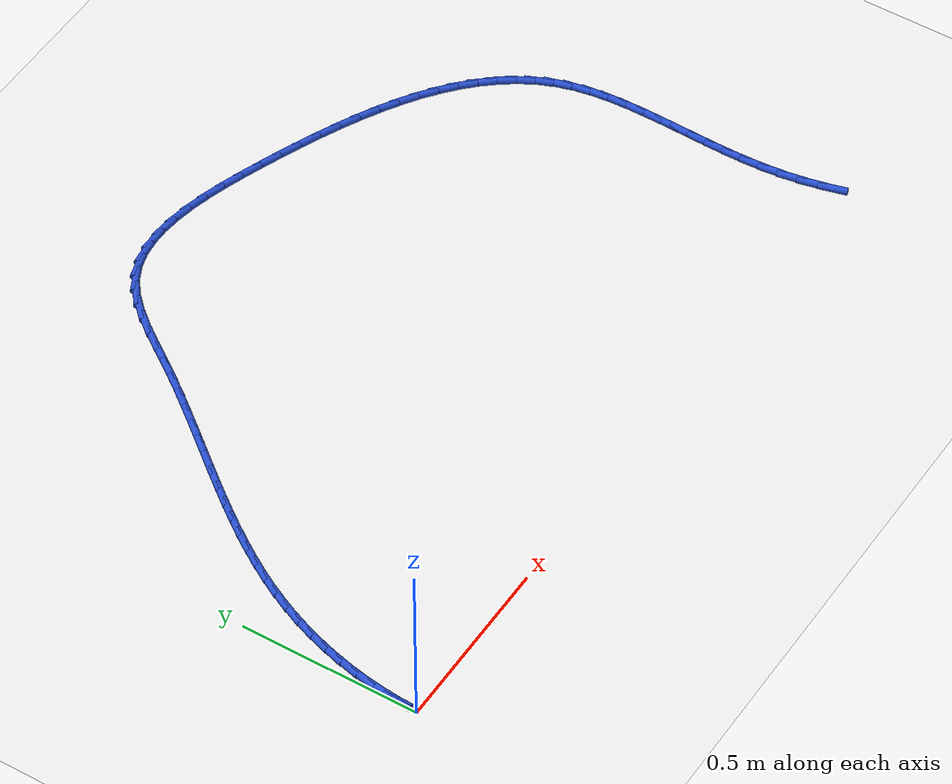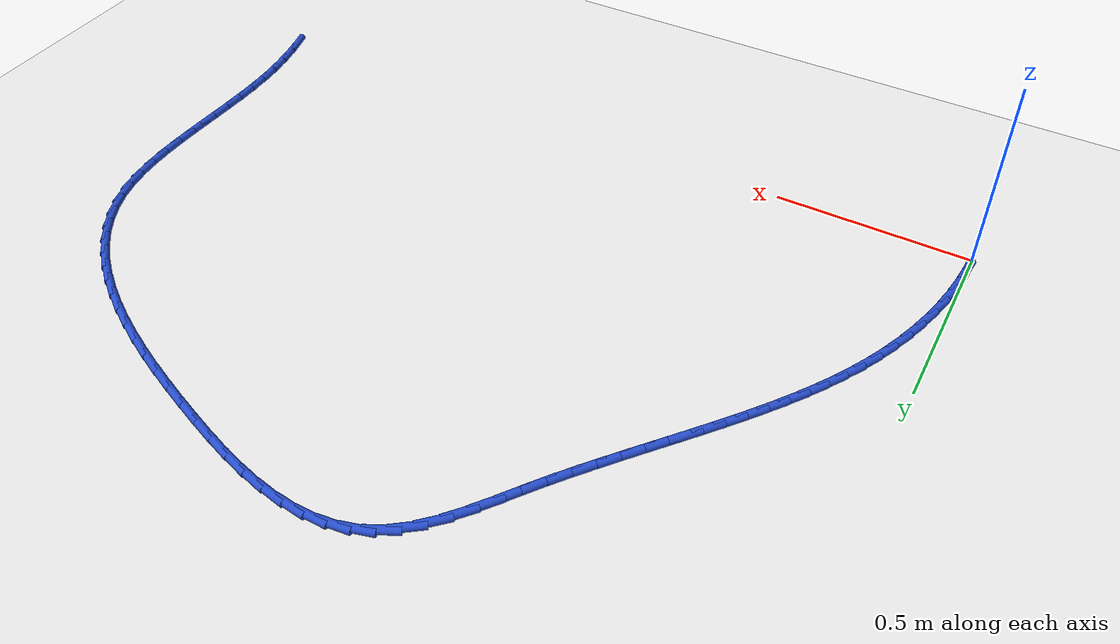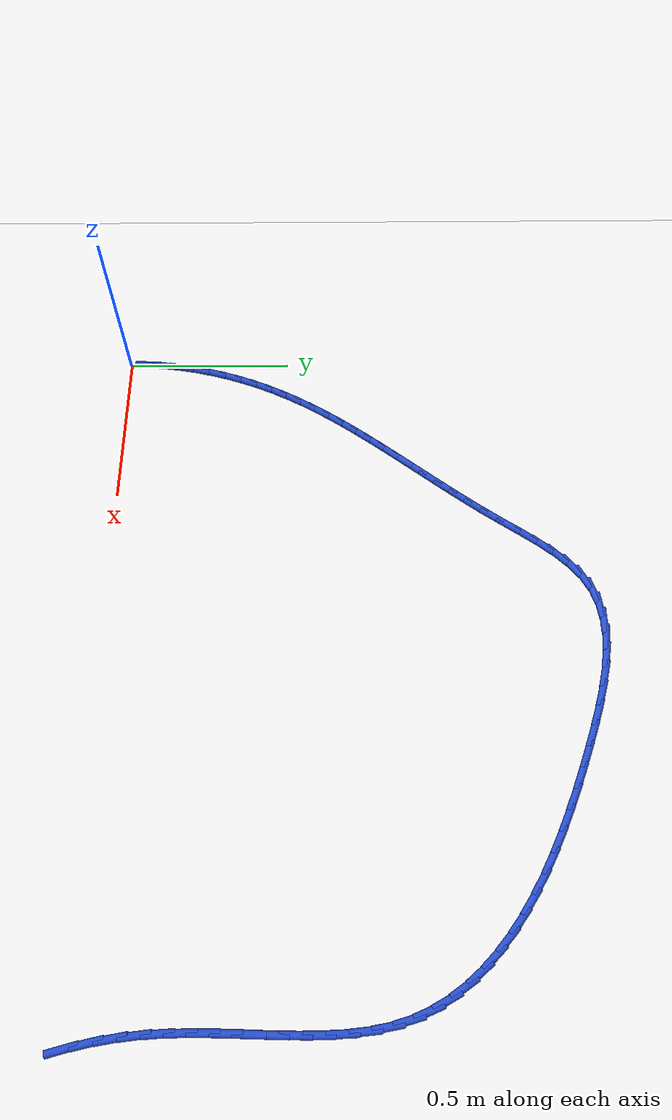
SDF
<sdf version="1.6">
 <world name="default">
  <model name="ground_plane">
   <static>1</static>
   <link name="link">
    <collision name="collision">
     <geometry><plane><normal>0 0 1</normal><size>100 100</size></plane></geometry>
     <surface><friction><ode><mu>100</mu><mu2>50</mu2></ode></friction></surface>
    </collision>
    <visual name="visual">
     <cast_shadows>0</cast_shadows>
     <geometry><plane><normal>0 0 1</normal><size>100 100</size></plane></geometry>
     <material>
      <script><uri>file://media/materials/scripts/gazebo.material</uri><name>Gazebo/WhiteGlow</name></script>
     </material>
    </visual>
   </link>
  </model>
  <model name="line">
   <link name="link_1">
    <pose>0.0022390424568003026 0.054379881303228794 0.01 0 1.57 1.4760865553160318</pose>
    <collision name="collision">
     <geometry><cylinder><radius>0.01</radius><length>0.08</length></cylinder></geometry>
    </collision>
    <visual name="visual">
     <material>
      <script><name>Gazebo/Blue</name><uri>file://media/materials/scripts/gazebo.material</uri></script>
     </material>
     <geometry><cylinder><radius>0.01</radius><length>0.08</length></cylinder></geometry>
    </visual>
   </link>
   <link name="link_2">
    <pose>0.007383099265475225 0.10853128400224349 0.01 0 1.57 1.4243346467549942</pose>
    <collision name="collision">
     <geometry><cylinder><radius>0.01</radius><length>0.08</length></cylinder></geometry>
    </collision>
    <visual name="visual">
     <material>
      <script><name>Gazebo/Blue</name><uri>file://media/materials/scripts/gazebo.material</uri></script>
     </material>
     <geometry><cylinder><radius>0.01</radius><length>0.08</length></cylinder></geometry>
    </visual>
   </link>
   <link name="link_3">
    <pose>0.01531320017357622 0.16228812144478444 0.01 0 1.57 1.3741611731956764</pose>
    <collision name="collision">
     <geometry><cylinder><radius>0.01</radius><length>0.08</length></cylinder></geometry>
    </collision>
    <visual name="visual">
     <material>
      <script><name>Gazebo/Blue</name><uri>file://media/materials/scripts/gazebo.material</uri></script>
     </material>
     <geometry><cylinder><radius>0.01</radius><length>0.08</length></cylinder></geometry>
    </visual>
   </link>
   <link name="link_4">
    <pose>0.02591037492865475 0.21548430697859156 0.01 0 1.57 1.3253169691965252</pose>
    <collision name="collision">
     <geometry><cylinder><radius>0.01</radius><length>0.08</length></cylinder></geometry>
    </collision>
    <visual name="visual">
     <material>
      <script><name>Gazebo/Blue</name><uri>file://media/materials/scripts/gazebo.material</uri></script>
     </material>
     <geometry><cylinder><radius>0.01</radius><length>0.08</length></cylinder></geometry>
    </visual>
   </link>
   <link name="link_5">
    <pose>0.03905565327826232 0.267953753951405 0.01 0 1.57 1.2775363864372953</pose>
    <collision name="collision">
     <geometry><cylinder><radius>0.01</radius><length>0.08</length></cylinder></geometry>
    </collision>
    <visual name="visual">
     <material>
      <script><name>Gazebo/Blue</name><uri>file://media/materials/scripts/gazebo.material</uri></script>
     </material>
     <geometry><cylinder><radius>0.01</radius><length>0.08</length></cylinder></geometry>
    </visual>
   </link>
   <link name="link_6">
    <pose>0.05463006496995043 0.319530375710965 0.01 0 1.57 1.230539522901242</pose>
    <collision name="collision">
     <geometry><cylinder><radius>0.01</radius><length>0.08</length></cylinder></geometry>
    </collision>
    <visual name="visual">
     <material>
      <script><name>Gazebo/Blue</name><uri>file://media/materials/scripts/gazebo.material</uri></script>
     </material>
     <geometry><cylinder><radius>0.01</radius><length>0.08</length></cylinder></geometry>
    </visual>
   </link>
   <link name="link_7">
    <pose>0.07251463975127054 0.37004808560501146 0.01 0 1.57 1.1840328055751552</pose>
    <collision name="collision">
     <geometry><cylinder><radius>0.01</radius><length>0.08</length></cylinder></geometry>
    </collision>
    <visual name="visual">
     <material>
      <script><name>Gazebo/Blue</name><uri>file://media/materials/scripts/gazebo.material</uri></script>
     </material>
     <geometry><cylinder><radius>0.01</radius><length>0.08</length></cylinder></geometry>
    </visual>
   </link>
   <link name="link_8">
    <pose>0.09259040736977417 0.4193407969812844 0.01 0 1.57 1.1379035304697056</pose>
    <collision name="collision">
     <geometry><cylinder><radius>0.01</radius><length>0.08</length></cylinder></geometry>
    </collision>
    <visual name="visual">
     <material>
      <script><name>Gazebo/Blue</name><uri>file://media/materials/scripts/gazebo.material</uri></script>
     </material>
     <geometry><cylinder><radius>0.01</radius><length>0.08</length></cylinder></geometry>
    </visual>
   </link>
   <link name="link_9">
    <pose>0.11473577889846497 0.46726133566953015 0.01 0 1.57 1.0940509659782551</pose>
    <collision name="collision">
     <geometry><cylinder><radius>0.01</radius><length>0.08</length></cylinder></geometry>
    </collision>
    <visual name="visual">
     <material>
      <script><name>Gazebo/Blue</name><uri>file://media/materials/scripts/gazebo.material</uri></script>
     </material>
     <geometry><cylinder><radius>0.01</radius><length>0.08</length></cylinder></geometry>
    </visual>
   </link>
   <link name="link_10">
    <pose>0.1388020942412135 0.5138580397671618 0.01 0 1.57 1.0539960227331135</pose>
    <collision name="collision">
     <geometry><cylinder><radius>0.01</radius><length>0.08</length></cylinder></geometry>
    </collision>
    <visual name="visual">
     <material>
      <script><name>Gazebo/Blue</name><uri>file://media/materials/scripts/gazebo.material</uri></script>
     </material>
     <geometry><cylinder><radius>0.01</radius><length>0.08</length></cylinder></geometry>
    </visual>
   </link>
   <link name="link_11">
    <pose>0.16462470592113299 0.559294710765527 0.01 0 1.57 1.0180784345199974</pose>
    <collision name="collision">
     <geometry><cylinder><radius>0.01</radius><length>0.08</length></cylinder></geometry>
    </collision>
    <visual name="visual">
     <material>
      <script><name>Gazebo/Blue</name><uri>file://media/materials/scripts/gazebo.material</uri></script>
     </material>
     <geometry><cylinder><radius>0.01</radius><length>0.08</length></cylinder></geometry>
    </visual>
   </link>
   <link name="link_12">
    <pose>0.19203875917318564 0.6037366472238043 0.01 0 1.57 0.986523205857931</pose>
    <collision name="collision">
     <geometry><cylinder><radius>0.01</radius><length>0.08</length></cylinder></geometry>
    </collision>
    <visual name="visual">
     <material>
      <script><name>Gazebo/Blue</name><uri>file://media/materials/scripts/gazebo.material</uri></script>
     </material>
     <geometry><cylinder><radius>0.01</radius><length>0.08</length></cylinder></geometry>
    </visual>
   </link>
   <link name="link_13">
    <pose>0.22087939923233366 0.647349147701173 0.01 0 1.57 0.959468707556324</pose>
    <collision name="collision">
     <geometry><cylinder><radius>0.01</radius><length>0.08</length></cylinder></geometry>
    </collision>
    <visual name="visual">
     <material>
      <script><name>Gazebo/Blue</name><uri>file://media/materials/scripts/gazebo.material</uri></script>
     </material>
     <geometry><cylinder><radius>0.01</radius><length>0.08</length></cylinder></geometry>
    </visual>
   </link>
   <link name="link_14">
    <pose>0.25098177133353927 0.6902975107568113 0.01 0 1.57 0.9369821409539862</pose>
    <collision name="collision">
     <geometry><cylinder><radius>0.01</radius><length>0.08</length></cylinder></geometry>
    </collision>
    <visual name="visual">
     <material>
      <script><name>Gazebo/Blue</name><uri>file://media/materials/scripts/gazebo.material</uri></script>
     </material>
     <geometry><cylinder><radius>0.01</radius><length>0.08</length></cylinder></geometry>
    </visual>
   </link>
   <link name="link_15">
    <pose>0.2821810207117648 0.7327470349498988 0.01 0 1.57 0.9190753835880875</pose>
    <collision name="collision">
     <geometry><cylinder><radius>0.01</radius><length>0.08</length></cylinder></geometry>
    </collision>
    <visual name="visual">
     <material>
      <script><name>Gazebo/Blue</name><uri>file://media/materials/scripts/gazebo.material</uri></script>
     </material>
     <geometry><cylinder><radius>0.01</radius><length>0.08</length></cylinder></geometry>
    </visual>
   </link>
   <link name="link_16">
    <pose>0.31431229260197247 0.7748630188396135 0.01 0 1.57 0.9057194745621432</pose>
    <collision name="collision">
     <geometry><cylinder><radius>0.01</radius><length>0.08</length></cylinder></geometry>
    </collision>
    <visual name="visual">
     <material>
      <script><name>Gazebo/Blue</name><uri>file://media/materials/scripts/gazebo.material</uri></script>
     </material>
     <geometry><cylinder><radius>0.01</radius><length>0.08</length></cylinder></geometry>
    </visual>
   </link>
   <link name="link_17">
    <pose>0.3472107322391245 0.816810760985135 0.01 0 1.57 0.8968566969022087</pose>
    <collision name="collision">
     <geometry><cylinder><radius>0.01</radius><length>0.08</length></cylinder></geometry>
    </collision>
    <visual name="visual">
     <material>
      <script><name>Gazebo/Blue</name><uri>file://media/materials/scripts/gazebo.material</uri></script>
     </material>
     <geometry><cylinder><radius>0.01</radius><length>0.08</length></cylinder></geometry>
    </visual>
   </link>
   <link name="link_18">
    <pose>0.3807114848581831 0.8587555599456416 0.01 0 1.57 0.8924097803168987</pose>
    <collision name="collision">
     <geometry><cylinder><radius>0.01</radius><length>0.08</length></cylinder></geometry>
    </collision>
    <visual name="visual">
     <material>
      <script><name>Gazebo/Blue</name><uri>file://media/materials/scripts/gazebo.material</uri></script>
     </material>
     <geometry><cylinder><radius>0.01</radius><length>0.08</length></cylinder></geometry>
    </visual>
   </link>
   <link name="link_19">
    <pose>0.4146496956941105 0.9008627142803124 0.01 0 1.57 0.8922881439437028</pose>
    <collision name="collision">
     <geometry><cylinder><radius>0.01</radius><length>0.08</length></cylinder></geometry>
    </collision>
    <visual name="visual">
     <material>
      <script><name>Gazebo/Blue</name><uri>file://media/materials/scripts/gazebo.material</uri></script>
     </material>
     <geometry><cylinder><radius>0.01</radius><length>0.08</length></cylinder></geometry>
    </visual>
   </link>
   <link name="link_20">
    <pose>0.4488605099818691 0.9432975225483262 0.01 0 1.57 0.8963913430219269</pose>
    <collision name="collision">
     <geometry><cylinder><radius>0.01</radius><length>0.08</length></cylinder></geometry>
    </collision>
    <visual name="visual">
     <material>
      <script><name>Gazebo/Blue</name><uri>file://media/materials/scripts/gazebo.material</uri></script>
     </material>
     <geometry><cylinder><radius>0.01</radius><length>0.08</length></cylinder></geometry>
    </visual>
   </link>
   <link name="link_21">
    <pose>0.4831790729564208 0.9862252833088612 0.01 0 1.57 0.9046100182879823</pose>
    <collision name="collision">
     <geometry><cylinder><radius>0.01</radius><length>0.08</length></cylinder></geometry>
    </collision>
    <visual name="visual">
     <material>
      <script><name>Gazebo/Blue</name><uri>file://media/materials/scripts/gazebo.material</uri></script>
     </material>
     <geometry><cylinder><radius>0.01</radius><length>0.08</length></cylinder></geometry>
    </visual>
   </link>
   <link name="link_22">
    <pose>0.5174405298527281 1.029811295121097 0.01 0 1.57 0.9168247179570859</pose>
    <collision name="collision">
     <geometry><cylinder><radius>0.01</radius><length>0.08</length></cylinder></geometry>
    </collision>
    <visual name="visual">
     <material>
      <script><name>Gazebo/Blue</name><uri>file://media/materials/scripts/gazebo.material</uri></script>
     </material>
     <geometry><cylinder><radius>0.01</radius><length>0.08</length></cylinder></geometry>
    </visual>
   </link>
   <link name="link_23">
    <pose>0.5514800259057534 1.0742208565442124 0.01 0 1.57 0.9329030076732835</pose>
    <collision name="collision">
     <geometry><cylinder><radius>0.01</radius><length>0.08</length></cylinder></geometry>
    </collision>
    <visual name="visual">
     <material>
      <script><name>Gazebo/Blue</name><uri>file://media/materials/scripts/gazebo.material</uri></script>
     </material>
     <geometry><cylinder><radius>0.01</radius><length>0.08</length></cylinder></geometry>
    </visual>
   </link>
   <link name="link_24">
    <pose>0.5851327063504586 1.1196192661373858 0.01 0 1.57 0.9513599960890838</pose>
    <collision name="collision">
     <geometry><cylinder><radius>0.01</radius><length>0.08</length></cylinder></geometry>
    </collision>
    <visual name="visual">
     <material>
      <script><name>Gazebo/Blue</name><uri>file://media/materials/scripts/gazebo.material</uri></script>
     </material>
     <geometry><cylinder><radius>0.01</radius><length>0.08</length></cylinder></geometry>
    </visual>
   </link>
   <link name="link_25">
    <pose>0.6182712246254696 1.1660930450590108 0.01 0 1.57 0.9546941731813836</pose>
    <collision name="collision">
     <geometry><cylinder><radius>0.01</radius><length>0.08</length></cylinder></geometry>
    </collision>
    <visual name="visual">
     <material>
      <script><name>Gazebo/Blue</name><uri>file://media/materials/scripts/gazebo.material</uri></script>
     </material>
     <geometry><cylinder><radius>0.01</radius><length>0.08</length></cylinder></geometry>
    </visual>
   </link>
   <link name="link_26">
    <pose>0.6512631888355103 1.2126891754255185 0.01 0 1.57 0.9302929567576277</pose>
    <collision name="collision">
     <geometry><cylinder><radius>0.01</radius><length>0.08</length></cylinder></geometry>
    </collision>
    <visual name="visual">
     <material>
      <script><name>Gazebo/Blue</name><uri>file://media/materials/scripts/gazebo.material</uri></script>
     </material>
     <geometry><cylinder><radius>0.01</radius><length>0.08</length></cylinder></geometry>
    </visual>
   </link>
   <link name="link_27">
    <pose>0.6848259382244212 1.2577201091060215 0.01 0 1.57 0.8752677764476182</pose>
    <collision name="collision">
     <geometry><cylinder><radius>0.01</radius><length>0.08</length></cylinder></geometry>
    </collision>
    <visual name="visual">
     <material>
      <script><name>Gazebo/Blue</name><uri>file://media/materials/scripts/gazebo.material</uri></script>
     </material>
     <geometry><cylinder><radius>0.01</radius><length>0.08</length></cylinder></geometry>
    </visual>
   </link>
   <link name="link_28">
    <pose>0.719684172846758 1.2994828382707098 0.01 0 1.57 0.7842185363364818</pose>
    <collision name="collision">
     <geometry><cylinder><radius>0.01</radius><length>0.08</length></cylinder></geometry>
    </collision>
    <visual name="visual">
     <material>
      <script><name>Gazebo/Blue</name><uri>file://media/materials/scripts/gazebo.material</uri></script>
     </material>
     <geometry><cylinder><radius>0.01</radius><length>0.08</length></cylinder></geometry>
    </visual>
   </link>
   <link name="link_29">
    <pose>0.7565625927570755 1.3362743550897724 0.01 0 1.57 0.6499277924118434</pose>
    <collision name="collision">
     <geometry><cylinder><radius>0.01</radius><length>0.08</length></cylinder></geometry>
    </collision>
    <visual name="visual">
     <material>
      <script><name>Gazebo/Blue</name><uri>file://media/materials/scripts/gazebo.material</uri></script>
     </material>
     <geometry><cylinder><radius>0.01</radius><length>0.08</length></cylinder></geometry>
    </visual>
   </link>
   <link name="link_30">
    <pose>0.7961858980099293 1.3663916517333994 0.01 0 1.57 0.47115376710419815</pose>
    <collision name="collision">
     <geometry><cylinder><radius>0.01</radius><length>0.08</length></cylinder></geometry>
    </collision>
    <visual name="visual">
     <material>
      <script><name>Gazebo/Blue</name><uri>file://media/materials/scripts/gazebo.material</uri></script>
     </material>
     <geometry><cylinder><radius>0.01</radius><length>0.08</length></cylinder></geometry>
    </visual>
   </link>
   <link name="link_31">
    <pose>0.8392011386602475 1.3883043991376236 0.01 0 1.57 0.28782883131402026</pose>
    <collision name="collision">
     <geometry><cylinder><radius>0.01</radius><length>0.08</length></cylinder></geometry>
    </collision>
    <visual name="visual">
     <material>
      <script><name>Gazebo/Blue</name><uri>file://media/materials/scripts/gazebo.material</uri></script>
     </material>
     <geometry><cylinder><radius>0.01</radius><length>0.08</length></cylinder></geometry>
    </visual>
   </link>
   <link name="link_32">
    <pose>0.8855598792674302 1.4020288951233262 0.01 0 1.57 0.12848597164306225</pose>
    <collision name="collision">
     <geometry><cylinder><radius>0.01</radius><length>0.08</length></cylinder></geometry>
    </collision>
    <visual name="visual">
     <material>
      <script><name>Gazebo/Blue</name><uri>file://media/materials/scripts/gazebo.material</uri></script>
     </material>
     <geometry><cylinder><radius>0.01</radius><length>0.08</length></cylinder></geometry>
    </visual>
   </link>
   <link name="link_33">
    <pose>0.9348470828918742 1.4083966892140172 0.01 0 1.57 -0.002896581844115343</pose>
    <collision name="collision">
     <geometry><cylinder><radius>0.01</radius><length>0.08</length></cylinder></geometry>
    </collision>
    <visual name="visual">
     <material>
      <script><name>Gazebo/Blue</name><uri>file://media/materials/scripts/gazebo.material</uri></script>
     </material>
     <geometry><cylinder><radius>0.01</radius><length>0.08</length></cylinder></geometry>
    </visual>
   </link>
   <link name="link_34">
    <pose>0.9866444197591359 1.4082466535688647 0.01 0 1.57 -0.10774746901296946</pose>
    <collision name="collision">
     <geometry><cylinder><radius>0.01</radius><length>0.08</length></cylinder></geometry>
    </collision>
    <visual name="visual">
     <material>
      <script><name>Gazebo/Blue</name><uri>file://media/materials/scripts/gazebo.material</uri></script>
     </material>
     <geometry><cylinder><radius>0.01</radius><length>0.08</length></cylinder></geometry>
    </visual>
   </link>
   <link name="link_35">
    <pose>1.0405335600947718 1.4024176603470386 0.01 0 1.57 -0.18970989477356984</pose>
    <collision name="collision">
     <geometry><cylinder><radius>0.01</radius><length>0.08</length></cylinder></geometry>
    </collision>
    <visual name="visual">
     <material>
      <script><name>Gazebo/Blue</name><uri>file://media/materials/scripts/gazebo.material</uri></script>
     </material>
     <geometry><cylinder><radius>0.01</radius><length>0.08</length></cylinder></geometry>
    </visual>
   </link>
   <link name="link_36">
    <pose>1.0960961741243385 1.3917485817077082 0.01 0 1.57 -0.2526804181186774</pose>
    <collision name="collision">
     <geometry><cylinder><radius>0.01</radius><length>0.08</length></cylinder></geometry>
    </collision>
    <visual name="visual">
     <material>
      <script><name>Gazebo/Blue</name><uri>file://media/materials/scripts/gazebo.material</uri></script>
     </material>
     <geometry><cylinder><radius>0.01</radius><length>0.08</length></cylinder></geometry>
    </visual>
   </link>
   <link name="link_37">
    <pose>1.1529139320733928 1.377078289810043 0.01 0 1.57 -0.2999680848438112</pose>
    <collision name="collision">
     <geometry><cylinder><radius>0.01</radius><length>0.08</length></cylinder></geometry>
    </collision>
    <visual name="visual">
     <material>
      <script><name>Gazebo/Blue</name><uri>file://media/materials/scripts/gazebo.material</uri></script>
     </material>
     <geometry><cylinder><radius>0.01</radius><length>0.08</length></cylinder></geometry>
    </visual>
   </link>
   <link name="link_38">
    <pose>1.210568504167491 1.359245656813213 0.01 0 1.57 -0.33407273972191776</pose>
    <collision name="collision">
     <geometry><cylinder><radius>0.01</radius><length>0.08</length></cylinder></geometry>
    </collision>
    <visual name="visual">
     <material>
      <script><name>Gazebo/Blue</name><uri>file://media/materials/scripts/gazebo.material</uri></script>
     </material>
     <geometry><cylinder><radius>0.01</radius><length>0.08</length></cylinder></geometry>
    </visual>
   </link>
   <link name="link_39">
    <pose>1.2686415606321901 1.3390895548763873 0.01 0 1.57 -0.3567050726452201</pose>
    <collision name="collision">
     <geometry><cylinder><radius>0.01</radius><length>0.08</length></cylinder></geometry>
    </collision>
    <visual name="visual">
     <material>
      <script><name>Gazebo/Blue</name><uri>file://media/materials/scripts/gazebo.material</uri></script>
     </material>
     <geometry><cylinder><radius>0.01</radius><length>0.08</length></cylinder></geometry>
    </visual>
   </link>
   <link name="link_40">
    <pose>1.3267147757637379 1.3174488181871438 0.01 0 1.57 -0.3716649266323783</pose>
    <collision name="collision">
     <geometry><cylinder><radius>0.01</radius><length>0.08</length></cylinder></geometry>
    </collision>
    <visual name="visual">
     <material>
      <script><name>Gazebo/Blue</name><uri>file://media/materials/scripts/gazebo.material</uri></script>
     </material>
     <geometry><cylinder><radius>0.01</radius><length>0.08</length></cylinder></geometry>
    </visual>
   </link>
   <link name="link_41">
    <pose>1.3843906596289903 1.2949679239570293 0.01 0 1.57 -0.38870124824013785</pose>
    <collision name="collision">
     <geometry><cylinder><radius>0.01</radius><length>0.08</length></cylinder></geometry>
    </collision>
    <visual name="visual">
     <material>
      <script><name>Gazebo/Blue</name><uri>file://media/materials/scripts/gazebo.material</uri></script>
     </material>
     <geometry><cylinder><radius>0.01</radius><length>0.08</length></cylinder></geometry>
    </visual>
   </link>
   <link name="link_42">
    <pose>1.441341056239885 1.2716445993369665 0.01 0 1.57 -0.4100248646708028</pose>
    <collision name="collision">
     <geometry><cylinder><radius>0.01</radius><length>0.08</length></cylinder></geometry>
    </collision>
    <visual name="visual">
     <material>
      <script><name>Gazebo/Blue</name><uri>file://media/materials/scripts/gazebo.material</uri></script>
     </material>
     <geometry><cylinder><radius>0.01</radius><length>0.08</length></cylinder></geometry>
    </visual>
   </link>
   <link name="link_43">
    <pose>1.497252213330228 1.2473422129327394 0.01 0 1.57 -0.4359888340937455</pose>
    <collision name="collision">
     <geometry><cylinder><radius>0.01</radius><length>0.08</length></cylinder></geometry>
    </collision>
    <visual name="visual">
     <material>
      <script><name>Gazebo/Blue</name><uri>file://media/materials/scripts/gazebo.material</uri></script>
     </material>
     <geometry><cylinder><radius>0.01</radius><length>0.08</length></cylinder></geometry>
    </visual>
   </link>
   <link name="link_44">
    <pose>1.551810378633825 1.2219241333501318 0.01 0 1.57 -0.46704039360065797</pose>
    <collision name="collision">
     <geometry><cylinder><radius>0.01</radius><length>0.08</length></cylinder></geometry>
    </collision>
    <visual name="visual">
     <material>
      <script><name>Gazebo/Blue</name><uri>file://media/materials/scripts/gazebo.material</uri></script>
     </material>
     <geometry><cylinder><radius>0.01</radius><length>0.08</length></cylinder></geometry>
    </visual>
   </link>
   <link name="link_45">
    <pose>1.6047017998844797 1.1952537291949275 0.01 0 1.57 -0.5037227444229363</pose>
    <collision name="collision">
     <geometry><cylinder><radius>0.01</radius><length>0.08</length></cylinder></geometry>
    </collision>
    <visual name="visual">
     <material>
      <script><name>Gazebo/Blue</name><uri>file://media/materials/scripts/gazebo.material</uri></script>
     </material>
     <geometry><cylinder><radius>0.01</radius><length>0.08</length></cylinder></geometry>
    </visual>
   </link>
   <link name="link_46">
    <pose>1.6556127248159982 1.1671943690729105 0.01 0 1.57 -0.5466715869590618</pose>
    <collision name="collision">
     <geometry><cylinder><radius>0.01</radius><length>0.08</length></cylinder></geometry>
    </collision>
    <visual name="visual">
     <material>
      <script><name>Gazebo/Blue</name><uri>file://media/materials/scripts/gazebo.material</uri></script>
     </material>
     <geometry><cylinder><radius>0.01</radius><length>0.08</length></cylinder></geometry>
    </visual>
   </link>
   <link name="link_47">
    <pose>1.7042294011621848 1.1376094215898649 0.01 0 1.57 -0.5966007590990389</pose>
    <collision name="collision">
     <geometry><cylinder><radius>0.01</radius><length>0.08</length></cylinder></geometry>
    </collision>
    <visual name="visual">
     <material>
      <script><name>Gazebo/Blue</name><uri>file://media/materials/scripts/gazebo.material</uri></script>
     </material>
     <geometry><cylinder><radius>0.01</radius><length>0.08</length></cylinder></geometry>
    </visual>
   </link>
   <link name="link_48">
    <pose>1.7502380766568466 1.1063622553515746 0.01 0 1.57 -0.6542684716082908</pose>
    <collision name="collision">
     <geometry><cylinder><radius>0.01</radius><length>0.08</length></cylinder></geometry>
    </collision>
    <visual name="visual">
     <material>
      <script><name>Gazebo/Blue</name><uri>file://media/materials/scripts/gazebo.material</uri></script>
     </material>
     <geometry><cylinder><radius>0.01</radius><length>0.08</length></cylinder></geometry>
    </visual>
   </link>
   <link name="link_49">
    <pose>1.7933249990337863 1.0733162389638236 0.01 0 1.57 -0.7204125657458925</pose>
    <collision name="collision">
     <geometry><cylinder><radius>0.01</radius><length>0.08</length></cylinder></geometry>
    </collision>
    <visual name="visual">
     <material>
      <script><name>Gazebo/Blue</name><uri>file://media/materials/scripts/gazebo.material</uri></script>
     </material>
     <geometry><cylinder><radius>0.01</radius><length>0.08</length></cylinder></geometry>
    </visual>
   </link>
   <link name="link_50">
    <pose>1.8331764160268111 1.0383347410323962 0.01 0 1.57 -0.7956417371555586</pose>
    <collision name="collision">
     <geometry><cylinder><radius>0.01</radius><length>0.08</length></cylinder></geometry>
    </collision>
    <visual name="visual">
     <material>
      <script><name>Gazebo/Blue</name><uri>file://media/materials/scripts/gazebo.material</uri></script>
     </material>
     <geometry><cylinder><radius>0.01</radius><length>0.08</length></cylinder></geometry>
    </visual>
   </link>
   <link name="link_51">
    <pose>1.869478575369725 1.0012811301630757 0.01 0 1.57 -0.8802737280664794</pose>
    <collision name="collision">
     <geometry><cylinder><radius>0.01</radius><length>0.08</length></cylinder></geometry>
    </collision>
    <visual name="visual">
     <material>
      <script><name>Gazebo/Blue</name><uri>file://media/materials/scripts/gazebo.material</uri></script>
     </material>
     <geometry><cylinder><radius>0.01</radius><length>0.08</length></cylinder></geometry>
    </visual>
   </link>
   <link name="link_52">
    <pose>1.9019177247963333 0.9620187749616462 0.01 0 1.57 -0.9741271771004304</pose>
    <collision name="collision">
     <geometry><cylinder><radius>0.01</radius><length>0.08</length></cylinder></geometry>
    </collision>
    <visual name="visual">
     <material>
      <script><name>Gazebo/Blue</name><uri>file://media/materials/scripts/gazebo.material</uri></script>
     </material>
     <geometry><cylinder><radius>0.01</radius><length>0.08</length></cylinder></geometry>
    </visual>
   </link>
   <link name="link_53">
    <pose>1.930180112040441 0.9204110440338923 0.01 0 1.57 -1.0763057466797155</pose>
    <collision name="collision">
     <geometry><cylinder><radius>0.01</radius><length>0.08</length></cylinder></geometry>
    </collision>
    <visual name="visual">
     <material>
      <script><name>Gazebo/Blue</name><uri>file://media/materials/scripts/gazebo.material</uri></script>
     </material>
     <geometry><cylinder><radius>0.01</radius><length>0.08</length></cylinder></geometry>
    </visual>
   </link>
   <link name="link_54">
    <pose>1.9539519848358542 0.8763213059855977 0.01 0 1.57 -1.1850546487388498</pose>
    <collision name="collision">
     <geometry><cylinder><radius>0.01</radius><length>0.08</length></cylinder></geometry>
    </collision>
    <visual name="visual">
     <material>
      <script><name>Gazebo/Blue</name><uri>file://media/materials/scripts/gazebo.material</uri></script>
     </material>
     <geometry><cylinder><radius>0.01</radius><length>0.08</length></cylinder></geometry>
    </visual>
   </link>
   <link name="link_55">
    <pose>1.9729195909163768 0.8296129294225454 0.01 0 1.57 -1.2971792307961592</pose>
    <collision name="collision">
     <geometry><cylinder><radius>0.01</radius><length>0.08</length></cylinder></geometry>
    </collision>
    <visual name="visual">
     <material>
      <script><name>Gazebo/Blue</name><uri>file://media/materials/scripts/gazebo.material</uri></script>
     </material>
     <geometry><cylinder><radius>0.01</radius><length>0.08</length></cylinder></geometry>
    </visual>
   </link>
   <link name="link_56">
    <pose>1.9867963676709721 0.7801688885744567 0.01 0 1.57 -1.3974140076883164</pose>
    <collision name="collision">
     <geometry><cylinder><radius>0.01</radius><length>0.08</length></cylinder></geometry>
    </collision>
    <visual name="visual">
     <material>
      <script><name>Gazebo/Blue</name><uri>file://media/materials/scripts/gazebo.material</uri></script>
     </material>
     <geometry><cylinder><radius>0.01</radius><length>0.08</length></cylinder></geometry>
    </visual>
   </link>
   <link name="link_57">
    <pose>1.9958816667669042 0.7282946424334583 0.01 0 1.57 -1.4748461359365306</pose>
    <collision name="collision">
     <geometry><cylinder><radius>0.01</radius><length>0.08</length></cylinder></geometry>
    </collision>
    <visual name="visual">
     <material>
      <script><name>Gazebo/Blue</name><uri>file://media/materials/scripts/gazebo.material</uri></script>
     </material>
     <geometry><cylinder><radius>0.01</radius><length>0.08</length></cylinder></geometry>
    </visual>
   </link>
   <link name="link_58">
    <pose>2.001039642159687 0.6747029115474996 0.01 0 1.57 -1.532014505819472</pose>
    <collision name="collision">
     <geometry><cylinder><radius>0.01</radius><length>0.08</length></cylinder></geometry>
    </collision>
    <visual name="visual">
     <material>
      <script><name>Gazebo/Blue</name><uri>file://media/materials/scripts/gazebo.material</uri></script>
     </material>
     <geometry><cylinder><radius>0.01</radius><length>0.08</length></cylinder></geometry>
    </visual>
   </link>
   <link name="link_59">
    <pose>2.003157413279319 0.6201229761617231 0.01 0 1.57 1.5701523725100925</pose>
    <collision name="collision">
     <geometry><cylinder><radius>0.01</radius><length>0.08</length></cylinder></geometry>
    </collision>
    <visual name="visual">
     <material>
      <script><name>Gazebo/Blue</name><uri>file://media/materials/scripts/gazebo.material</uri></script>
     </material>
     <geometry><cylinder><radius>0.01</radius><length>0.08</length></cylinder></geometry>
    </visual>
   </link>
   <link name="link_60">
    <pose>2.0031220995557986 0.5652841165212736 0.01 0 1.57 1.546715828918001</pose>
    <collision name="collision">
     <geometry><cylinder><radius>0.01</radius><length>0.08</length></cylinder></geometry>
    </collision>
    <visual name="visual">
     <material>
      <script><name>Gazebo/Blue</name><uri>file://media/materials/scripts/gazebo.material</uri></script>
     </material>
     <geometry><cylinder><radius>0.01</radius><length>0.08</length></cylinder></geometry>
    </visual>
   </link>
   <link name="link_61">
    <pose>2.001812032090265 0.5108909623873911 0.01 0 1.57 1.5358651331182982</pose>
    <collision name="collision">
     <geometry><cylinder><radius>0.01</radius><length>0.08</length></cylinder></geometry>
    </collision>
    <visual name="visual">
     <material>
      <script><name>Gazebo/Blue</name><uri>file://media/materials/scripts/gazebo.material</uri></script>
     </material>
     <geometry><cylinder><radius>0.01</radius><length>0.08</length></cylinder></geometry>
    </visual>
   </link>
   <link name="link_62">
    <pose>1.9999346937156486 0.4571689292641732 0.01 0 1.57 1.5352837262179913</pose>
    <collision name="collision">
     <geometry><cylinder><radius>0.01</radius><length>0.08</length></cylinder></geometry>
    </collision>
    <visual name="visual">
     <material>
      <script><name>Gazebo/Blue</name><uri>file://media/materials/scripts/gazebo.material</uri></script>
     </material>
     <geometry><cylinder><radius>0.01</radius><length>0.08</length></cylinder></geometry>
    </visual>
   </link>
   <link name="link_63">
    <pose>1.9980424791554017 0.4039084242476523 0.01 0 1.57 1.5451472682016236</pose>
    <collision name="collision">
     <geometry><cylinder><radius>0.01</radius><length>0.08</length></cylinder></geometry>
    </collision>
    <visual name="visual">
     <material>
      <script><name>Gazebo/Blue</name><uri>file://media/materials/scripts/gazebo.material</uri></script>
     </material>
     <geometry><cylinder><radius>0.01</radius><length>0.08</length></cylinder></geometry>
    </visual>
   </link>
   <link name="link_64">
    <pose>1.9966821560941124 0.3508840710883387 0.01 0 1.57 1.5654833250983913</pose>
    <collision name="collision">
     <geometry><cylinder><radius>0.01</radius><length>0.08</length></cylinder></geometry>
    </collision>
    <visual name="visual">
     <material>
      <script><name>Gazebo/Blue</name><uri>file://media/materials/scripts/gazebo.material</uri></script>
     </material>
     <geometry><cylinder><radius>0.01</radius><length>0.08</length></cylinder></geometry>
    </visual>
   </link>
   <link name="link_65">
    <pose>1.9964004922163698 0.2978704935367421 0.01 0 1.57 -1.5455563566686896</pose>
    <collision name="collision">
     <geometry><cylinder><radius>0.01</radius><length>0.08</length></cylinder></geometry>
    </collision>
    <visual name="visual">
     <material>
      <script><name>Gazebo/Blue</name><uri>file://media/materials/scripts/gazebo.material</uri></script>
     </material>
     <geometry><cylinder><radius>0.01</radius><length>0.08</length></cylinder></geometry>
    </visual>
   </link>
   <link name="link_66">
    <pose>1.9977442552067624 0.24464231534337177 0.01 0 1.57 -1.5053768922109605</pose>
    <collision name="collision">
     <geometry><cylinder><radius>0.01</radius><length>0.08</length></cylinder></geometry>
    </collision>
    <visual name="visual">
     <material>
      <script><name>Gazebo/Blue</name><uri>file://media/materials/scripts/gazebo.material</uri></script>
     </material>
     <geometry><cylinder><radius>0.01</radius><length>0.08</length></cylinder></geometry>
    </visual>
   </link>
   <link name="link_67">
    <pose>2.001260212749877 0.19097416025873837 0.01 0 1.57 -1.456543324320946</pose>
    <collision name="collision">
     <geometry><cylinder><radius>0.01</radius><length>0.08</length></cylinder></geometry>
    </collision>
    <visual name="visual">
     <material>
      <script><name>Gazebo/Blue</name><uri>file://media/materials/scripts/gazebo.material</uri></script>
     </material>
     <geometry><cylinder><radius>0.01</radius><length>0.08</length></cylinder></geometry>
    </visual>
   </link>
   <link name="link_68">
    <pose>2.007495132530304 0.13664065203335085 0.01 0 1.57 -1.400907823950107</pose>
    <collision name="collision">
     <geometry><cylinder><radius>0.01</radius><length>0.08</length></cylinder></geometry>
    </collision>
    <visual name="visual">
     <material>
      <script><name>Gazebo/Blue</name><uri>file://media/materials/scripts/gazebo.material</uri></script>
     </material>
     <geometry><cylinder><radius>0.01</radius><length>0.08</length></cylinder></geometry>
    </visual>
   </link>
   <link name="link_69">
    <pose>2.016966521887778 0.08142742700411018 0.01 0 1.57 -1.3496364118905433</pose>
    <collision name="collision">
     <geometry><cylinder><radius>0.01</radius><length>0.08</length></cylinder></geometry>
    </collision>
    <visual name="visual">
     <material>
      <script><name>Gazebo/Blue</name><uri>file://media/materials/scripts/gazebo.material</uri></script>
     </material>
     <geometry><cylinder><radius>0.01</radius><length>0.08</length></cylinder></geometry>
    </visual>
   </link>
   <link name="link_70">
    <pose>2.0295742600240567 0.02535257547457161 0.01 0 1.57 -1.3112410905375973</pose>
    <collision name="collision">
     <geometry><cylinder><radius>0.01</radius><length>0.08</length></cylinder></geometry>
    </collision>
    <visual name="visual">
     <material>
      <script><name>Gazebo/Blue</name><uri>file://media/materials/scripts/gazebo.material</uri></script>
     </material>
     <geometry><cylinder><radius>0.01</radius><length>0.08</length></cylinder></geometry>
    </visual>
   </link>
   <link name="link_141">
    <pose>0.002257018028520668 0.05437236455444663 0.01 0 1.57 1.5293097550713362</pose>
    <collision name="collision">
     <geometry><cylinder><radius>0.01</radius><length>0.08</length></cylinder></geometry>
    </collision>
    <visual name="visual">
     <material>
      <script><name>Gazebo/Blue</name><uri>file://media/materials/scripts/gazebo.material</uri></script>
     </material>
     <geometry><cylinder><radius>0.01</radius><length>0.08</length></cylinder></geometry>
    </visual>
   </link>
  </model>
 </world>
</sdf>
